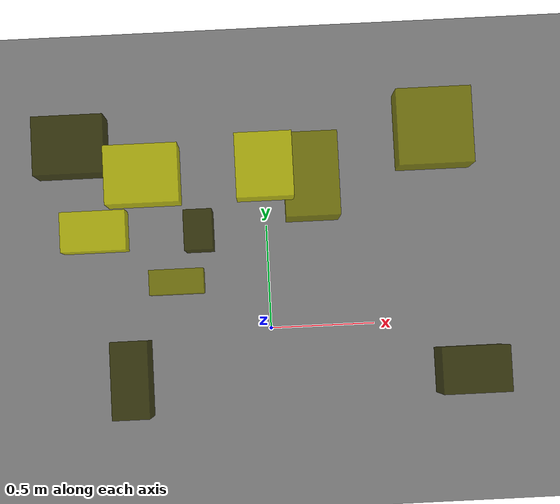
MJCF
<?xml version="1.0"?>
<mujoco model="obstacle_scene">
  <compiler angle="radian" coordinate="local"/>
  <option timestep="0.001" gravity="0 0 -9.81"/>

  <asset>
    <material name="obstacle_mat" rgba="0.8 0.8 0.0 0.8"/>
    <material name="ground_mat" rgba="0.5 0.5 0.5 1"/>
  </asset>

  <worldbody>
    <!-- Ground plane -->
    <geom name="ground" type="plane" size="3 3 0.1" material="ground_mat"/>

    <!-- Obstacles -->
    <body name="obstacle_0" pos="-0.272245 0.396097 1.077048">
      <geom name="obs_0" type="box" size="0.056038 0.079542 0.084294" rgba="0.2 0.2 0.0 0.8"/>
    </body>
    <body name="obstacle_1" pos="-0.398649 0.217370 0.663963">
      <geom name="obs_1" type="box" size="0.116799 0.053506 0.051909" rgba="0.5 0.5 0.0 0.8"/>
    </body>
    <body name="obstacle_2" pos="-0.525739 0.679232 0.691952">
      <geom name="obs_2" type="box" size="0.158125 0.126372 0.088119" rgba="0.8 0.8 0.0 0.8"/>
    </body>
    <body name="obstacle_3" pos="0.861805 -0.219163 0.602039">
      <geom name="obs_3" type="box" size="0.146152 0.099477 0.123324" rgba="0.2 0.2 0.0 0.8"/>
    </body>
    <body name="obstacle_4" pos="0.733156 0.823678 0.695010">
      <geom name="obs_4" type="box" size="0.160365 0.163969 0.089680" rgba="0.5 0.5 0.0 0.8"/>
    </body>
    <body name="obstacle_5" pos="-0.767481 0.462305 0.512276">
      <geom name="obs_5" type="box" size="0.144497 0.089011 0.066811" rgba="0.8 0.8 0.0 0.8"/>
    </body>
    <body name="obstacle_6" pos="-0.642940 -0.203646 0.360297">
      <geom name="obs_6" type="box" size="0.084393 0.174338 0.118643" rgba="0.2 0.2 0.0 0.8"/>
    </body>
    <body name="obstacle_7" pos="0.205232 0.659906 0.536568">
      <geom name="obs_7" type="box" size="0.118075 0.184789 0.124996" rgba="0.5 0.5 0.0 0.8"/>
    </body>
    <body name="obstacle_8" pos="-0.001790 0.672909 0.849396">
      <geom name="obs_8" type="box" size="0.119157 0.135222 0.077561" rgba="0.8 0.8 0.0 0.8"/>
    </body>
    <body name="obstacle_9" pos="-0.860151 0.847540 0.507914">
      <geom name="obs_9" type="box" size="0.157952 0.130685 0.090264" rgba="0.2 0.2 0.0 0.8"/>
    </body>
  </worldbody>
</mujoco>
